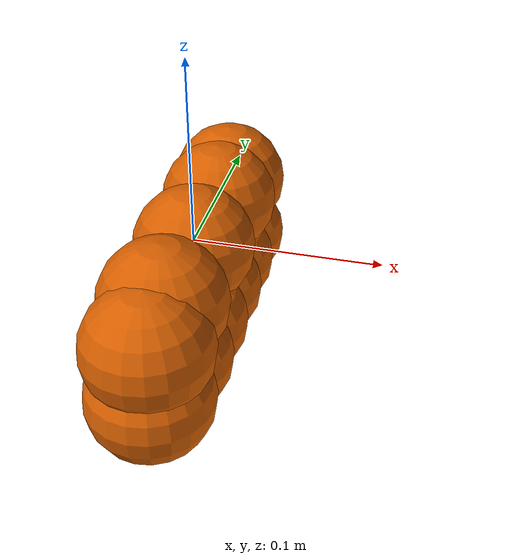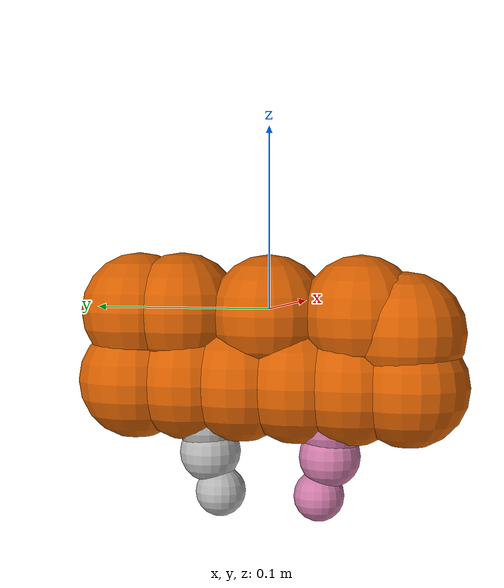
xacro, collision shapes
<?xml version="1.0" encoding="utf-8"?>
<robot xmlns:xacro="http://www.ros.org/wiki/xacro" name="ff_pxyz_rz">
  <xacro:include filename="../collision_spheres.xacro"/>
  <xacro:include filename="../prismatic_xyz_revolute_z.xacro"/>
  <xacro:include filename="hand_fingers_fixed.xacro"/>
  <xacro:prismatic_xyz_revolute_z ns="pxyz_rz"/>
  <xacro:hand_fingers_fixed ns="panda" rpy="${pi} 0 0" connected_to="pxyz_rz_revolute_z_link"  q_fingers="0.02"/>
</robot>

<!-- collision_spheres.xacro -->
<robot xmlns:xacro="http://www.ros.org/wiki/xacro">
  <material name="redtran">
    <color rgba=".9 .1 .1 0.3"/>
  </material>
   <material name="greentran">
    <color rgba=".1 .9 .1 0.3"/>
   </material>
   <material name="bluetran">
    <color rgba=".1 .1 .9 0.3"/>
   </material>

   <xacro:macro name="collision_sphere" params="radius:='0' xyz:='0 0 0' material:='redtran' ">
    <collision>
      <origin xyz="${xyz}"/>
      <geometry> <sphere radius="${radius}"/> </geometry>
      <material name="${material}"/>
    </collision>
   </xacro:macro>

   <xacro:macro name="visual_sphere" params="radius:='0' xyz:='0 0 0' material:='redtran' ">
    <visual>
      <origin xyz="${xyz}"/>
      <geometry> <sphere radius="${radius}"/> </geometry>
      <material name="${material}"/>
    </visual>
   </xacro:macro>
</robot>

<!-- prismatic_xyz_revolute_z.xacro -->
<robot xmlns:xacro="http://www.ros.org/wiki/xacro" name="prismatic_xyz_revolute_z">
  <xacro:macro name="prismatic_xyz_revolute_z" params="connected_to:='' ns:='' rpy:='0 0 0' xyz:='0 0 0' ">
    <xacro:unless value="${connected_to == ''}">
      <joint name="${ns}_base_joint" type="fixed">
        <parent link="${connected_to}"/>
        <child link="${ns}_base_link"/>
        <origin xyz="${xyz}" rpy="${rpy}"/>
      </joint>
    </xacro:unless>
    <link name="${ns}_base_link" />
    <link name="${ns}_prismatic_x_link" />
    <link name="${ns}_prismatic_y_link" />
    <link name="${ns}_prismatic_z_link" />
    <link name="${ns}_revolute_z_link" />
    <joint name="${ns}_prismatic_x_joint" type="prismatic">
      <parent link="${ns}_base_link"/>
      <child link="${ns}_prismatic_x_link"/>
      <origin xyz="0 0 0" rpy="0 0 0"/>
      <axis xyz="1 0 0"/>
    </joint>
    <joint name="${ns}_prismatic_y_joint" type="prismatic">
      <parent link="${ns}_prismatic_x_link"/>
      <child link="${ns}_prismatic_y_link"/>
      <origin xyz="0 0 0" rpy="0 0 0"/>
      <axis xyz="0 1 0"/>
    </joint>
    <joint name="${ns}_prismatic_z_joint" type="prismatic">
      <parent link="${ns}_prismatic_y_link"/>
      <child link="${ns}_prismatic_z_link"/>
      <origin xyz="0 0 0" rpy="0 0 0"/>
      <axis xyz="0 0 1"/>
    </joint>
    <joint name="${ns}_revolute_z_joint" type="revolute">
      <parent link="${ns}_prismatic_z_link"/>
      <child link="${ns}_revolute_z_link"/>
      <origin xyz="0 0 0" rpy="0 0 0"/>
      <axis xyz="0 0 -1"/>
    </joint>
  </xacro:macro>
</robot>

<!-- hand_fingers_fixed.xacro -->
<robot xmlns:xacro="http://www.ros.org/wiki/xacro" name="hand_fingers_fixed">
  <xacro:macro name="hand_fingers_fixed" params="connected_to:='' ns:='' rpy:='0 0 0' xyz:='0 0 0' q_fingers:='0'">
    <xacro:unless value="${connected_to == ''}">
      <joint name="${ns}_hand_joint" type="fixed">
        <parent link="${connected_to}"/>
        <child link="${ns}_hand"/>
        <origin xyz="${xyz}" rpy="${rpy}"/>
      </joint>
    </xacro:unless>
    <link name="${ns}_hand">
      <visual>
        <geometry>
          <mesh filename="package://franka_description/meshes/visual/hand.dae"/>
        </geometry>
      </visual>
      <xacro:collision_sphere radius=".033" xyz="0 -.077 .041" material="redtran"/>
      <xacro:collision_sphere radius=".033" xyz="0 .075 .012" material="redtran"/>
      <xacro:collision_sphere radius=".033" xyz="0 .077 .041" material="redtran"/>
      <xacro:collision_sphere radius=".033" xyz="0 -.05 .002" material="redtran"/>
      <xacro:collision_sphere radius=".033" xyz="0 -.046 .041" material="redtran"/>
      <xacro:collision_sphere radius=".033" xyz="0 .046 .041" material="redtran"/>
      <xacro:collision_sphere radius=".033" xyz="0 .016 .041" material="redtran"/>
      <xacro:collision_sphere radius=".033" xyz="0 -.016 .041" material="redtran"/>
      <xacro:collision_sphere radius=".033" xyz="0 -.075 .002" material="redtran"/>
      <xacro:collision_sphere radius=".033" xyz="0 .051 .003" material="redtran"/>
      <xacro:collision_sphere radius=".033" xyz="0 0 .003" material="redtran"/>
    </link>
    <link name="${ns}_leftfinger">
      <visual>
        <geometry>
          <mesh filename="package://franka_description/meshes/visual/finger.dae"/>
        </geometry>
      </visual>
      <xacro:collision_sphere radius=".017" xyz="0 .014 .022" material="greentran"/>
      <xacro:collision_sphere radius=".018" xyz="0 .015 .005" material="greentran"/>
      <xacro:collision_sphere radius=".014" xyz="0 .008 .044" material="greentran"/>
    </link>
    <link name="${ns}_rightfinger">
      <visual>
        <origin xyz="0 0 0" rpy="0 0 ${pi}"/>
        <geometry>
          <mesh filename="package://franka_description/meshes/visual/finger.dae"/>
        </geometry>
      </visual>
      <xacro:collision_sphere radius=".017" xyz="0 -.014 .022" material="greentran"/>
      <xacro:collision_sphere radius=".018" xyz="0 -.015 .005" material="greentran"/>
      <xacro:collision_sphere radius=".014" xyz="0 -.008 .044" material="greentran"/>
    </link>
    <link name="${ns}_hand_center"/>
    <joint name="${ns}_finger_joint1" type="fixed">
      <parent link="${ns}_hand"/>
      <child link="${ns}_leftfinger"/>
      <origin xyz="0 ${q_fingers} 0.0584" rpy="0 0 0"/>
    </joint>
    <joint name="${ns}_finger_joint2" type="fixed">
      <parent link="${ns}_hand"/>
      <child link="${ns}_rightfinger"/>
      <origin xyz="0 -${q_fingers} 0.0584" rpy="0 0 0"/>
      <mimic joint="${ns}_finger_joint1" />
    </joint>
    <joint name="${ns}_hand_center_joint" type="fixed">
      <parent link="${ns}_hand"/>
      <child link="${ns}_hand_center"/>
      <origin xyz="0 0 0.08" rpy="0 0 0"/>
    </joint>
  </xacro:macro>
</robot>
